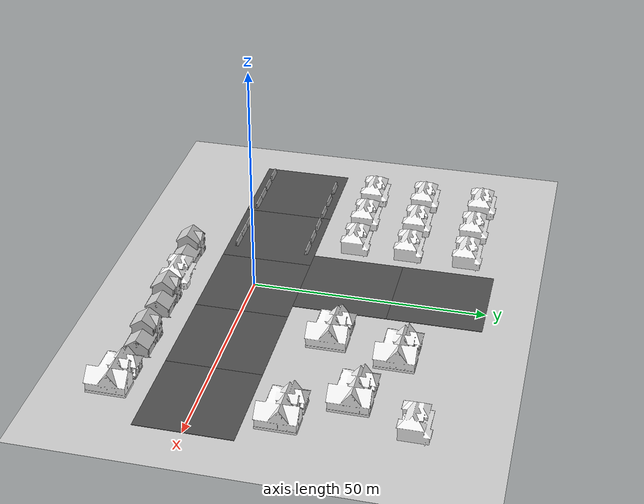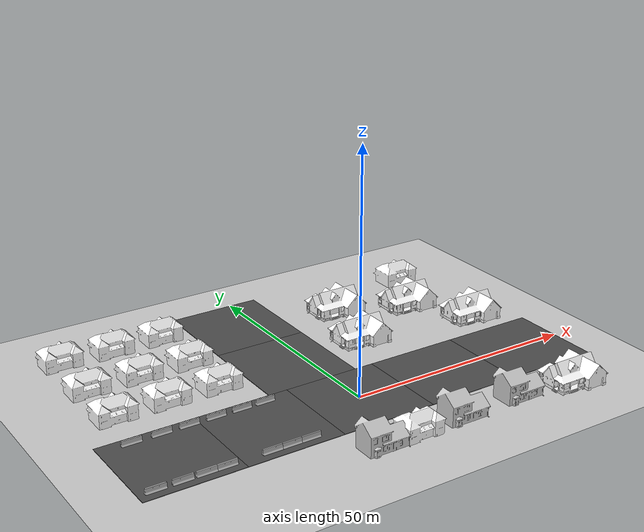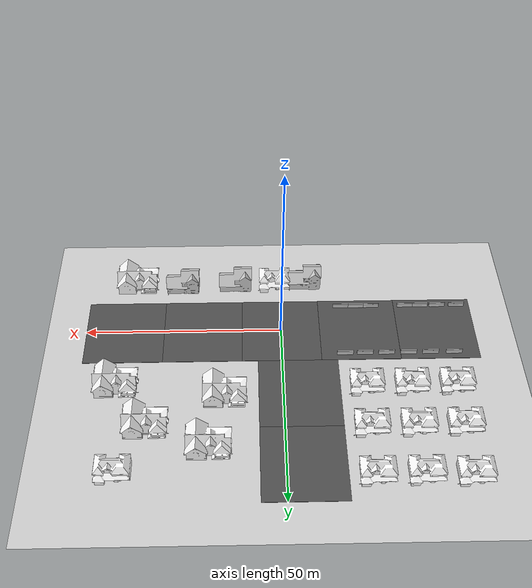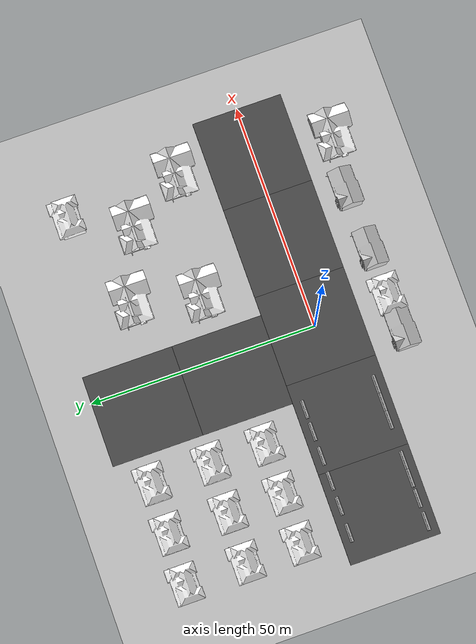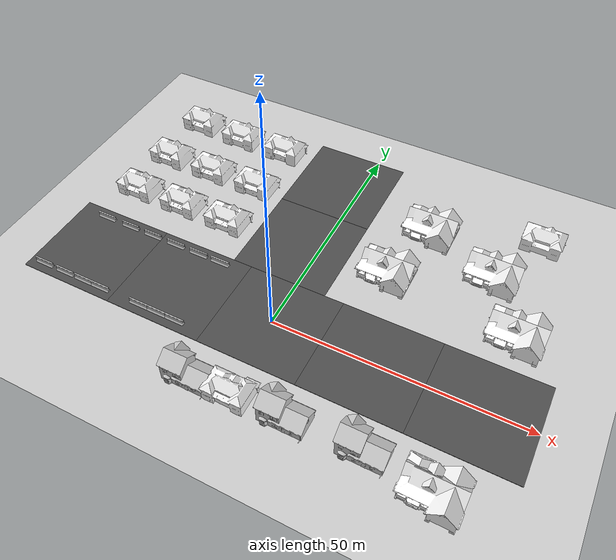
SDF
<sdf version="1.4">
 <world name="default">
  <light name="sun" type="directional">
   <pose>0 0 10 0 -0 0</pose>
   <diffuse>0.8 0.8 0.8 1</diffuse>
   <specular>0.2 0.2 0.2 1</specular>
   <attenuation>
    <range>1000</range>
    <constant>0.9</constant>
    <linear>0.01</linear>
    <quadratic>0.001</quadratic>
   </attenuation>
   <direction>-0.5 0.1 -0.9</direction>
  </light>
  <model name="ground_plane">
   <static>1</static>
   <link name="link">
    <collision name="collision">
     <geometry><plane><normal>0 0 1</normal><size>100 100</size></plane></geometry>
     <surface><friction><ode><mu>100</mu><mu2>50</mu2></ode></friction></surface>
    </collision>
    <visual name="visual">
     <cast_shadows>0</cast_shadows>
     <geometry><plane><normal>0 0 1</normal><size>100 100</size></plane></geometry>
     <material>
      <script><uri>file://media/materials/scripts/gazebo.material</uri><name>Gazebo/Grey</name></script>
     </material>
    </visual>
    <velocity_decay><linear>0</linear><angular>0</angular></velocity_decay>
   </link>
  </model>
  <physics type="ode">
   <max_step_size>0.001</max_step_size>
   <real_time_factor>1</real_time_factor>
   <real_time_update_rate>1000</real_time_update_rate>
   <gravity>0 0 -9.8</gravity>
  </physics>
  <scene><ambient>0.4 0.4 0.4 1</ambient><background>0.7 0.7 0.7 1</background><shadows>1</shadows></scene>
  <spherical_coordinates>
   <surface_model>EARTH_WGS84</surface_model>
   <latitude_deg>0</latitude_deg>
   <longitude_deg>0</longitude_deg>
   <elevation>0</elevation>
   <heading_deg>0</heading_deg>
  </spherical_coordinates>
  <model name="asphalt_plane">
   <static>1</static>
   <link name="link">
    <collision name="collision"><geometry><box><size>20 20 0.1</size></box></geometry></collision>
    <visual name="visual">
     <cast_shadows>0</cast_shadows>
     <geometry><box><size>20 20 0.1</size></box></geometry>
     <material>
      <script>
       <uri>model://asphalt_plane/materials/scripts</uri>
       <uri>model://asphalt_plane/materials/textures</uri>
       <name>vrc/asphalt</name>
      </script>
     </material>
    </visual>
    <velocity_decay><linear>0</linear><angular>0</angular></velocity_decay>
   </link>
  </model>
  <model name="asphalt_plane_0">
   <static>1</static>
   <link name="link">
    <collision name="collision"><geometry><box><size>20 20 0.1</size></box></geometry></collision>
    <visual name="visual">
     <cast_shadows>0</cast_shadows>
     <geometry><box><size>20 20 0.1</size></box></geometry>
     <material>
      <script>
       <uri>model://asphalt_plane/materials/scripts</uri>
       <uri>model://asphalt_plane/materials/textures</uri>
       <name>vrc/asphalt</name>
      </script>
     </material>
    </visual>
    <velocity_decay><linear>0</linear><angular>0</angular></velocity_decay>
   </link>
   <pose>20 0 0 0 -0 0</pose>
  </model>
  <model name="asphalt_plane_1">
   <static>1</static>
   <link name="link">
    <collision name="collision"><geometry><box><size>20 20 0.1</size></box></geometry></collision>
    <visual name="visual">
     <cast_shadows>0</cast_shadows>
     <geometry><box><size>20 20 0.1</size></box></geometry>
     <material>
      <script>
       <uri>model://asphalt_plane/materials/scripts</uri>
       <uri>model://asphalt_plane/materials/textures</uri>
       <name>vrc/asphalt</name>
      </script>
     </material>
    </visual>
    <velocity_decay><linear>0</linear><angular>0</angular></velocity_decay>
   </link>
   <pose>40 0 0 0 -0 0</pose>
  </model>
  <model name="asphalt_plane_2">
   <static>1</static>
   <link name="link">
    <collision name="collision"><geometry><box><size>20 20 0.1</size></box></geometry></collision>
    <visual name="visual">
     <cast_shadows>0</cast_shadows>
     <geometry><box><size>20 20 0.1</size></box></geometry>
     <material>
      <script>
       <uri>model://asphalt_plane/materials/scripts</uri>
       <uri>model://asphalt_plane/materials/textures</uri>
       <name>vrc/asphalt</name>
      </script>
     </material>
    </visual>
    <velocity_decay><linear>0</linear><angular>0</angular></velocity_decay>
   </link>
   <pose>-20 0 0 0 -0 0</pose>
  </model>
  <model name="asphalt_plane_3">
   <static>1</static>
   <link name="link">
    <collision name="collision"><geometry><box><size>20 20 0.1</size></box></geometry></collision>
    <visual name="visual">
     <cast_shadows>0</cast_shadows>
     <geometry><box><size>20 20 0.1</size></box></geometry>
     <material>
      <script>
       <uri>model://asphalt_plane/materials/scripts</uri>
       <uri>model://asphalt_plane/materials/textures</uri>
       <name>vrc/asphalt</name>
      </script>
     </material>
    </visual>
    <velocity_decay><linear>0</linear><angular>0</angular></velocity_decay>
   </link>
   <pose>-40 0 0 0 -0 0</pose>
  </model>
  <model name="House 1">
   <static>1</static>
   <link name="link">
    <collision name="collision">
     <geometry><mesh><uri>model://house_1/meshes/house_1.dae</uri></mesh></geometry>
    </collision>
    <visual name="visual">
     <geometry><mesh><uri>model://house_1/meshes/house_1.dae</uri></mesh></geometry>
     <material>
      <script>
       <uri>model://house_1/materials/scripts</uri>
       <uri>model://house_1/materials/textures</uri>
       <name>House_1/Diffuse</name>
      </script>
      <shader type="normal_map_object_space"><normal_map>House_1_Normal.png</normal_map></shader>
     </material>
    </visual>
    <velocity_decay><linear>0</linear><angular>0</angular></velocity_decay>
   </link>
   <pose>41 17 0 0 -0 0</pose>
  </model>
  <model name="House 1_0">
   <static>1</static>
   <link name="link">
    <collision name="collision">
     <geometry><mesh><uri>model://house_1/meshes/house_1.dae</uri></mesh></geometry>
    </collision>
    <visual name="visual">
     <geometry><mesh><uri>model://house_1/meshes/house_1.dae</uri></mesh></geometry>
     <material>
      <script>
       <uri>model://house_1/materials/scripts</uri>
       <uri>model://house_1/materials/textures</uri>
       <name>House_1/Diffuse</name>
      </script>
      <shader type="normal_map_object_space"><normal_map>House_1_Normal.png</normal_map></shader>
     </material>
    </visual>
    <velocity_decay><linear>0</linear><angular>0</angular></velocity_decay>
   </link>
   <pose>33 29 0 0 -0 0</pose>
  </model>
  <model name="House 1_1">
   <static>1</static>
   <link name="link">
    <collision name="collision">
     <geometry><mesh><uri>model://house_1/meshes/house_1.dae</uri></mesh></geometry>
    </collision>
    <visual name="visual">
     <geometry><mesh><uri>model://house_1/meshes/house_1.dae</uri></mesh></geometry>
     <material>
      <script>
       <uri>model://house_1/materials/scripts</uri>
       <uri>model://house_1/materials/textures</uri>
       <name>House_1/Diffuse</name>
      </script>
      <shader type="normal_map_object_space"><normal_map>House_1_Normal.png</normal_map></shader>
     </material>
    </visual>
    <velocity_decay><linear>0</linear><angular>0</angular></velocity_decay>
   </link>
   <pose>18 35 0 0 -0 0</pose>
  </model>
  <model name="House 1_2">
   <static>1</static>
   <link name="link">
    <collision name="collision">
     <geometry><mesh><uri>model://house_1/meshes/house_1.dae</uri></mesh></geometry>
    </collision>
    <visual name="visual">
     <geometry><mesh><uri>model://house_1/meshes/house_1.dae</uri></mesh></geometry>
     <material>
      <script>
       <uri>model://house_1/materials/scripts</uri>
       <uri>model://house_1/materials/textures</uri>
       <name>House_1/Diffuse</name>
      </script>
      <shader type="normal_map_object_space"><normal_map>House_1_Normal.png</normal_map></shader>
     </material>
    </visual>
    <velocity_decay><linear>0</linear><angular>0</angular></velocity_decay>
   </link>
   <pose>14.4212 20.407 0 0 -0 0</pose>
  </model>
  <model name="asphalt_plane_4">
   <static>1</static>
   <link name="link">
    <collision name="collision"><geometry><box><size>20 20 0.1</size></box></geometry></collision>
    <visual name="visual">
     <cast_shadows>0</cast_shadows>
     <geometry><box><size>20 20 0.1</size></box></geometry>
     <material>
      <script>
       <uri>model://asphalt_plane/materials/scripts</uri>
       <uri>model://asphalt_plane/materials/textures</uri>
       <name>vrc/asphalt</name>
      </script>
     </material>
    </visual>
    <velocity_decay><linear>0</linear><angular>0</angular></velocity_decay>
   </link>
   <pose>-4 20 0 0 -0 0</pose>
  </model>
  <model name="asphalt_plane_5">
   <static>1</static>
   <link name="link">
    <collision name="collision"><geometry><box><size>20 20 0.1</size></box></geometry></collision>
    <visual name="visual">
     <cast_shadows>0</cast_shadows>
     <geometry><box><size>20 20 0.1</size></box></geometry>
     <material>
      <script>
       <uri>model://asphalt_plane/materials/scripts</uri>
       <uri>model://asphalt_plane/materials/textures</uri>
       <name>vrc/asphalt</name>
      </script>
     </material>
    </visual>
    <velocity_decay><linear>0</linear><angular>0</angular></velocity_decay>
   </link>
   <pose>-4 40 0 0 -0 0</pose>
  </model>
  <model name="House 2">
   <static>1</static>
   <link name="link">
    <collision name="collision">
     <geometry><mesh><uri>model://house_2/meshes/house_2.dae</uri></mesh></geometry>
    </collision>
    <visual name="visual">
     <geometry><mesh><uri>model://house_2/meshes/house_2.dae</uri></mesh></geometry>
     <material>
      <script>
       <uri>model://house_2/materials/scripts</uri>
       <uri>model://house_2/materials/textures</uri>
       <uri>model://house_1/materials/textures</uri>
       <name>House_2/Diffuse</name>
      </script>
      <shader type="normal_map_object_space">
       <normal_map>model://house_1/materials/textures/House_1_Normal.png</normal_map>
      </shader>
     </material>
    </visual>
    <velocity_decay><linear>0</linear><angular>0</angular></velocity_decay>
   </link>
   <pose>38.5095 41.5429 0 0 -0 0</pose>
  </model>
  <model name="House 2_0">
   <static>1</static>
   <link name="link">
    <collision name="collision">
     <geometry><mesh><uri>model://house_2/meshes/house_2.dae</uri></mesh></geometry>
    </collision>
    <visual name="visual">
     <geometry><mesh><uri>model://house_2/meshes/house_2.dae</uri></mesh></geometry>
     <material>
      <script>
       <uri>model://house_2/materials/scripts</uri>
       <uri>model://house_2/materials/textures</uri>
       <uri>model://house_1/materials/textures</uri>
       <name>House_2/Diffuse</name>
      </script>
      <shader type="normal_map_object_space">
       <normal_map>model://house_1/materials/textures/House_1_Normal.png</normal_map>
      </shader>
     </material>
    </visual>
    <velocity_decay><linear>0</linear><angular>0</angular></velocity_decay>
   </link>
   <pose>-43 43.404 0 0 -0 0</pose>
  </model>
  <model name="House 2_1">
   <static>1</static>
   <link name="link">
    <collision name="collision">
     <geometry><mesh><uri>model://house_2/meshes/house_2.dae</uri></mesh></geometry>
    </collision>
    <visual name="visual">
     <geometry><mesh><uri>model://house_2/meshes/house_2.dae</uri></mesh></geometry>
     <material>
      <script>
       <uri>model://house_2/materials/scripts</uri>
       <uri>model://house_2/materials/textures</uri>
       <uri>model://house_1/materials/textures</uri>
       <name>House_2/Diffuse</name>
      </script>
      <shader type="normal_map_object_space">
       <normal_map>model://house_1/materials/textures/House_1_Normal.png</normal_map>
      </shader>
     </material>
    </visual>
    <velocity_decay><linear>0</linear><angular>0</angular></velocity_decay>
   </link>
   <pose>-32 43 0 0 -0 0</pose>
  </model>
  <model name="House 2_2">
   <static>1</static>
   <link name="link">
    <collision name="collision">
     <geometry><mesh><uri>model://house_2/meshes/house_2.dae</uri></mesh></geometry>
    </collision>
    <visual name="visual">
     <geometry><mesh><uri>model://house_2/meshes/house_2.dae</uri></mesh></geometry>
     <material>
      <script>
       <uri>model://house_2/materials/scripts</uri>
       <uri>model://house_2/materials/textures</uri>
       <uri>model://house_1/materials/textures</uri>
       <name>House_2/Diffuse</name>
      </script>
      <shader type="normal_map_object_space">
       <normal_map>model://house_1/materials/textures/House_1_Normal.png</normal_map>
      </shader>
     </material>
    </visual>
    <velocity_decay><linear>0</linear><angular>0</angular></velocity_decay>
   </link>
   <pose>-21 43 0 0 -0 0</pose>
  </model>
  <model name="House 2_3">
   <static>1</static>
   <link name="link">
    <collision name="collision">
     <geometry><mesh><uri>model://house_2/meshes/house_2.dae</uri></mesh></geometry>
    </collision>
    <visual name="visual">
     <geometry><mesh><uri>model://house_2/meshes/house_2.dae</uri></mesh></geometry>
     <material>
      <script>
       <uri>model://house_2/materials/scripts</uri>
       <uri>model://house_2/materials/textures</uri>
       <uri>model://house_1/materials/textures</uri>
       <name>House_2/Diffuse</name>
      </script>
      <shader type="normal_map_object_space">
       <normal_map>model://house_1/materials/textures/House_1_Normal.png</normal_map>
      </shader>
     </material>
    </visual>
    <velocity_decay><linear>0</linear><angular>0</angular></velocity_decay>
   </link>
   <pose>-21 30 0 0 -0 0</pose>
  </model>
  <model name="House 2_4">
   <static>1</static>
   <link name="link">
    <collision name="collision">
     <geometry><mesh><uri>model://house_2/meshes/house_2.dae</uri></mesh></geometry>
    </collision>
    <visual name="visual">
     <geometry><mesh><uri>model://house_2/meshes/house_2.dae</uri></mesh></geometry>
     <material>
      <script>
       <uri>model://house_2/materials/scripts</uri>
       <uri>model://house_2/materials/textures</uri>
       <uri>model://house_1/materials/textures</uri>
       <name>House_2/Diffuse</name>
      </script>
      <shader type="normal_map_object_space">
       <normal_map>model://house_1/materials/textures/House_1_Normal.png</normal_map>
      </shader>
     </material>
    </visual>
    <velocity_decay><linear>0</linear><angular>0</angular></velocity_decay>
   </link>
   <pose>-32 30 0 0 -0 0</pose>
  </model>
  <model name="House 2_5">
   <static>1</static>
   <link name="link">
    <collision name="collision">
     <geometry><mesh><uri>model://house_2/meshes/house_2.dae</uri></mesh></geometry>
    </collision>
    <visual name="visual">
     <geometry><mesh><uri>model://house_2/meshes/house_2.dae</uri></mesh></geometry>
     <material>
      <script>
       <uri>model://house_2/materials/scripts</uri>
       <uri>model://house_2/materials/textures</uri>
       <uri>model://house_1/materials/textures</uri>
       <name>House_2/Diffuse</name>
      </script>
      <shader type="normal_map_object_space">
       <normal_map>model://house_1/materials/textures/House_1_Normal.png</normal_map>
      </shader>
     </material>
    </visual>
    <velocity_decay><linear>0</linear><angular>0</angular></velocity_decay>
   </link>
   <pose>-43 30 0 0 -0 0</pose>
  </model>
  <model name="House 2_6">
   <static>1</static>
   <link name="link">
    <collision name="collision">
     <geometry><mesh><uri>model://house_2/meshes/house_2.dae</uri></mesh></geometry>
    </collision>
    <visual name="visual">
     <geometry><mesh><uri>model://house_2/meshes/house_2.dae</uri></mesh></geometry>
     <material>
      <script>
       <uri>model://house_2/materials/scripts</uri>
       <uri>model://house_2/materials/textures</uri>
       <uri>model://house_1/materials/textures</uri>
       <name>House_2/Diffuse</name>
      </script>
      <shader type="normal_map_object_space">
       <normal_map>model://house_1/materials/textures/House_1_Normal.png</normal_map>
      </shader>
     </material>
    </visual>
    <velocity_decay><linear>0</linear><angular>0</angular></velocity_decay>
   </link>
   <pose>-21 18 0 0 -0 0</pose>
  </model>
  <model name="House 2_7">
   <static>1</static>
   <link name="link">
    <collision name="collision">
     <geometry><mesh><uri>model://house_2/meshes/house_2.dae</uri></mesh></geometry>
    </collision>
    <visual name="visual">
     <geometry><mesh><uri>model://house_2/meshes/house_2.dae</uri></mesh></geometry>
     <material>
      <script>
       <uri>model://house_2/materials/scripts</uri>
       <uri>model://house_2/materials/textures</uri>
       <uri>model://house_1/materials/textures</uri>
       <name>House_2/Diffuse</name>
      </script>
      <shader type="normal_map_object_space">
       <normal_map>model://house_1/materials/textures/House_1_Normal.png</normal_map>
      </shader>
     </material>
    </visual>
    <velocity_decay><linear>0</linear><angular>0</angular></velocity_decay>
   </link>
   <pose>-32 18 0 0 -0 0</pose>
  </model>
  <model name="House 2_8">
   <static>1</static>
   <link name="link">
    <collision name="collision">
     <geometry><mesh><uri>model://house_2/meshes/house_2.dae</uri></mesh></geometry>
    </collision>
    <visual name="visual">
     <geometry><mesh><uri>model://house_2/meshes/house_2.dae</uri></mesh></geometry>
     <material>
      <script>
       <uri>model://house_2/materials/scripts</uri>
       <uri>model://house_2/materials/textures</uri>
       <uri>model://house_1/materials/textures</uri>
       <name>House_2/Diffuse</name>
      </script>
      <shader type="normal_map_object_space">
       <normal_map>model://house_1/materials/textures/House_1_Normal.png</normal_map>
      </shader>
     </material>
    </visual>
    <velocity_decay><linear>0</linear><angular>0</angular></velocity_decay>
   </link>
   <pose>-43 18 0 0 -0 0</pose>
  </model>
  <model name="jersey_barrier">
   <static>1</static>
   <link name="link">
    <visual name="visual">
     <geometry><mesh><uri>model://jersey_barrier/meshes/jersey_barrier.dae</uri></mesh></geometry>
    </visual>
    <collision name="upright">
     <pose>0 0 0.5715 0 -0 0</pose>
     <geometry><box><size>4.06542 0.3063 1.143</size></box></geometry>
    </collision>
    <collision name="base">
     <pose>0 0 0.032258 0 -0 0</pose>
     <geometry><box><size>4.06542 0.8107 0.064516</size></box></geometry>
    </collision>
    <collision name="base2">
     <pose>0 0 0.1 0 -0 0</pose>
     <geometry><box><size>4.06542 0.65 0.1</size></box></geometry>
    </collision>
    <collision name="base3">
     <pose>0 0 0.2 0 -0 0</pose>
     <geometry><box><size>4.06542 0.5 0.1</size></box></geometry>
    </collision>
    <collision name="left-angle">
     <pose>0 -0.224 0.2401 0.9 -0 0</pose>
     <geometry><box><size>4.06542 0.5 0.064516</size></box></geometry>
    </collision>
    <collision name="right-angle">
     <pose>0 0.224 0.2401 -0.9 0 0</pose>
     <geometry><box><size>4.06542 0.5 0.064516</size></box></geometry>
    </collision>
    <velocity_decay><linear>0</linear><angular>0</angular></velocity_decay>
   </link>
   <pose>-16 8 0 0 -0 0</pose>
  </model>
  <model name="jersey_barrier_0">
   <static>1</static>
   <link name="link">
    <visual name="visual">
     <geometry><mesh><uri>model://jersey_barrier/meshes/jersey_barrier.dae</uri></mesh></geometry>
    </visual>
    <collision name="upright">
     <pose>0 0 0.5715 0 -0 0</pose>
     <geometry><box><size>4.06542 0.3063 1.143</size></box></geometry>
    </collision>
    <collision name="base">
     <pose>0 0 0.032258 0 -0 0</pose>
     <geometry><box><size>4.06542 0.8107 0.064516</size></box></geometry>
    </collision>
    <collision name="base2">
     <pose>0 0 0.1 0 -0 0</pose>
     <geometry><box><size>4.06542 0.65 0.1</size></box></geometry>
    </collision>
    <collision name="base3">
     <pose>0 0 0.2 0 -0 0</pose>
     <geometry><box><size>4.06542 0.5 0.1</size></box></geometry>
    </collision>
    <collision name="left-angle">
     <pose>0 -0.224 0.2401 0.9 -0 0</pose>
     <geometry><box><size>4.06542 0.5 0.064516</size></box></geometry>
    </collision>
    <collision name="right-angle">
     <pose>0 0.224 0.2401 -0.9 0 0</pose>
     <geometry><box><size>4.06542 0.5 0.064516</size></box></geometry>
    </collision>
    <velocity_decay><linear>0</linear><angular>0</angular></velocity_decay>
   </link>
   <pose>-21 8 0 0 -0 0</pose>
  </model>
  <model name="jersey_barrier_1">
   <static>1</static>
   <link name="link">
    <visual name="visual">
     <geometry><mesh><uri>model://jersey_barrier/meshes/jersey_barrier.dae</uri></mesh></geometry>
    </visual>
    <collision name="upright">
     <pose>0 0 0.5715 0 -0 0</pose>
     <geometry><box><size>4.06542 0.3063 1.143</size></box></geometry>
    </collision>
    <collision name="base">
     <pose>0 0 0.032258 0 -0 0</pose>
     <geometry><box><size>4.06542 0.8107 0.064516</size></box></geometry>
    </collision>
    <collision name="base2">
     <pose>0 0 0.1 0 -0 0</pose>
     <geometry><box><size>4.06542 0.65 0.1</size></box></geometry>
    </collision>
    <collision name="base3">
     <pose>0 0 0.2 0 -0 0</pose>
     <geometry><box><size>4.06542 0.5 0.1</size></box></geometry>
    </collision>
    <collision name="left-angle">
     <pose>0 -0.224 0.2401 0.9 -0 0</pose>
     <geometry><box><size>4.06542 0.5 0.064516</size></box></geometry>
    </collision>
    <collision name="right-angle">
     <pose>0 0.224 0.2401 -0.9 0 0</pose>
     <geometry><box><size>4.06542 0.5 0.064516</size></box></geometry>
    </collision>
    <velocity_decay><linear>0</linear><angular>0</angular></velocity_decay>
   </link>
   <pose>-26.4371 8 0 0 -0 0</pose>
  </model>
  <model name="jersey_barrier_2">
   <static>1</static>
   <link name="link">
    <visual name="visual">
     <geometry><mesh><uri>model://jersey_barrier/meshes/jersey_barrier.dae</uri></mesh></geometry>
    </visual>
    <collision name="upright">
     <pose>0 0 0.5715 0 -0 0</pose>
     <geometry><box><size>4.06542 0.3063 1.143</size></box></geometry>
    </collision>
    <collision name="base">
     <pose>0 0 0.032258 0 -0 0</pose>
     <geometry><box><size>4.06542 0.8107 0.064516</size></box></geometry>
    </collision>
    <collision name="base2">
     <pose>0 0 0.1 0 -0 0</pose>
     <geometry><box><size>4.06542 0.65 0.1</size></box></geometry>
    </collision>
    <collision name="base3">
     <pose>0 0 0.2 0 -0 0</pose>
     <geometry><box><size>4.06542 0.5 0.1</size></box></geometry>
    </collision>
    <collision name="left-angle">
     <pose>0 -0.224 0.2401 0.9 -0 0</pose>
     <geometry><box><size>4.06542 0.5 0.064516</size></box></geometry>
    </collision>
    <collision name="right-angle">
     <pose>0 0.224 0.2401 -0.9 0 0</pose>
     <geometry><box><size>4.06542 0.5 0.064516</size></box></geometry>
    </collision>
    <velocity_decay><linear>0</linear><angular>0</angular></velocity_decay>
   </link>
   <pose>-32 8 0 0 -0 0</pose>
  </model>
  <model name="jersey_barrier_3">
   <static>1</static>
   <link name="link">
    <visual name="visual">
     <geometry><mesh><uri>model://jersey_barrier/meshes/jersey_barrier.dae</uri></mesh></geometry>
    </visual>
    <collision name="upright">
     <pose>0 0 0.5715 0 -0 0</pose>
     <geometry><box><size>4.06542 0.3063 1.143</size></box></geometry>
    </collision>
    <collision name="base">
     <pose>0 0 0.032258 0 -0 0</pose>
     <geometry><box><size>4.06542 0.8107 0.064516</size></box></geometry>
    </collision>
    <collision name="base2">
     <pose>0 0 0.1 0 -0 0</pose>
     <geometry><box><size>4.06542 0.65 0.1</size></box></geometry>
    </collision>
    <collision name="base3">
     <pose>0 0 0.2 0 -0 0</pose>
     <geometry><box><size>4.06542 0.5 0.1</size></box></geometry>
    </collision>
    <collision name="left-angle">
     <pose>0 -0.224 0.2401 0.9 -0 0</pose>
     <geometry><box><size>4.06542 0.5 0.064516</size></box></geometry>
    </collision>
    <collision name="right-angle">
     <pose>0 0.224 0.2401 -0.9 0 0</pose>
     <geometry><box><size>4.06542 0.5 0.064516</size></box></geometry>
    </collision>
    <velocity_decay><linear>0</linear><angular>0</angular></velocity_decay>
   </link>
   <pose>-37.5643 8 0 0 -0 0</pose>
  </model>
  <model name="jersey_barrier_4">
   <static>1</static>
   <link name="link">
    <visual name="visual">
     <geometry><mesh><uri>model://jersey_barrier/meshes/jersey_barrier.dae</uri></mesh></geometry>
    </visual>
    <collision name="upright">
     <pose>0 0 0.5715 0 -0 0</pose>
     <geometry><box><size>4.06542 0.3063 1.143</size></box></geometry>
    </collision>
    <collision name="base">
     <pose>0 0 0.032258 0 -0 0</pose>
     <geometry><box><size>4.06542 0.8107 0.064516</size></box></geometry>
    </collision>
    <collision name="base2">
     <pose>0 0 0.1 0 -0 0</pose>
     <geometry><box><size>4.06542 0.65 0.1</size></box></geometry>
    </collision>
    <collision name="base3">
     <pose>0 0 0.2 0 -0 0</pose>
     <geometry><box><size>4.06542 0.5 0.1</size></box></geometry>
    </collision>
    <collision name="left-angle">
     <pose>0 -0.224 0.2401 0.9 -0 0</pose>
     <geometry><box><size>4.06542 0.5 0.064516</size></box></geometry>
    </collision>
    <collision name="right-angle">
     <pose>0 0.224 0.2401 -0.9 0 0</pose>
     <geometry><box><size>4.06542 0.5 0.064516</size></box></geometry>
    </collision>
    <velocity_decay><linear>0</linear><angular>0</angular></velocity_decay>
   </link>
   <pose>-43.5077 8 0 0 -0 0</pose>
  </model>
  <model name="jersey_barrier_5">
   <static>1</static>
   <link name="link">
    <visual name="visual">
     <geometry><mesh><uri>model://jersey_barrier/meshes/jersey_barrier.dae</uri></mesh></geometry>
    </visual>
    <collision name="upright">
     <pose>0 0 0.5715 0 -0 0</pose>
     <geometry><box><size>4.06542 0.3063 1.143</size></box></geometry>
    </collision>
    <collision name="base">
     <pose>0 0 0.032258 0 -0 0</pose>
     <geometry><box><size>4.06542 0.8107 0.064516</size></box></geometry>
    </collision>
    <collision name="base2">
     <pose>0 0 0.1 0 -0 0</pose>
     <geometry><box><size>4.06542 0.65 0.1</size></box></geometry>
    </collision>
    <collision name="base3">
     <pose>0 0 0.2 0 -0 0</pose>
     <geometry><box><size>4.06542 0.5 0.1</size></box></geometry>
    </collision>
    <collision name="left-angle">
     <pose>0 -0.224 0.2401 0.9 -0 0</pose>
     <geometry><box><size>4.06542 0.5 0.064516</size></box></geometry>
    </collision>
    <collision name="right-angle">
     <pose>0 0.224 0.2401 -0.9 0 0</pose>
     <geometry><box><size>4.06542 0.5 0.064516</size></box></geometry>
    </collision>
    <velocity_decay><linear>0</linear><angular>0</angular></velocity_decay>
   </link>
   <pose>-16 -8 0 0 -0 0</pose>
  </model>
  <model name="jersey_barrier_6">
   <static>1</static>
   <link name="link">
    <visual name="visual">
     <geometry><mesh><uri>model://jersey_barrier/meshes/jersey_barrier.dae</uri></mesh></geometry>
    </visual>
    <collision name="upright">
     <pose>0 0 0.5715 0 -0 0</pose>
     <geometry><box><size>4.06542 0.3063 1.143</size></box></geometry>
    </collision>
    <collision name="base">
     <pose>0 0 0.032258 0 -0 0</pose>
     <geometry><box><size>4.06542 0.8107 0.064516</size></box></geometry>
    </collision>
    <collision name="base2">
     <pose>0 0 0.1 0 -0 0</pose>
     <geometry><box><size>4.06542 0.65 0.1</size></box></geometry>
    </collision>
    <collision name="base3">
     <pose>0 0 0.2 0 -0 0</pose>
     <geometry><box><size>4.06542 0.5 0.1</size></box></geometry>
    </collision>
    <collision name="left-angle">
     <pose>0 -0.224 0.2401 0.9 -0 0</pose>
     <geometry><box><size>4.06542 0.5 0.064516</size></box></geometry>
    </collision>
    <collision name="right-angle">
     <pose>0 0.224 0.2401 -0.9 0 0</pose>
     <geometry><box><size>4.06542 0.5 0.064516</size></box></geometry>
    </collision>
    <velocity_decay><linear>0</linear><angular>0</angular></velocity_decay>
   </link>
   <pose>-20 -8 0 0 -0 0</pose>
  </model>
  <model name="jersey_barrier_7">
   <static>1</static>
   <link name="link">
    <visual name="visual">
     <geometry><mesh><uri>model://jersey_barrier/meshes/jersey_barrier.dae</uri></mesh></geometry>
    </visual>
    <collision name="upright">
     <pose>0 0 0.5715 0 -0 0</pose>
     <geometry><box><size>4.06542 0.3063 1.143</size></box></geometry>
    </collision>
    <collision name="base">
     <pose>0 0 0.032258 0 -0 0</pose>
     <geometry><box><size>4.06542 0.8107 0.064516</size></box></geometry>
    </collision>
    <collision name="base2">
     <pose>0 0 0.1 0 -0 0</pose>
     <geometry><box><size>4.06542 0.65 0.1</size></box></geometry>
    </collision>
    <collision name="base3">
     <pose>0 0 0.2 0 -0 0</pose>
     <geometry><box><size>4.06542 0.5 0.1</size></box></geometry>
    </collision>
    <collision name="left-angle">
     <pose>0 -0.224 0.2401 0.9 -0 0</pose>
     <geometry><box><size>4.06542 0.5 0.064516</size></box></geometry>
    </collision>
    <collision name="right-angle">
     <pose>0 0.224 0.2401 -0.9 0 0</pose>
     <geometry><box><size>4.06542 0.5 0.064516</size></box></geometry>
    </collision>
    <velocity_decay><linear>0</linear><angular>0</angular></velocity_decay>
   </link>
   <pose>-24 -8 0 0 -0 0</pose>
  </model>
  <model name="jersey_barrier_9">
   <static>1</static>
   <link name="link">
    <visual name="visual">
     <geometry><mesh><uri>model://jersey_barrier/meshes/jersey_barrier.dae</uri></mesh></geometry>
    </visual>
    <collision name="upright">
     <pose>0 0 0.5715 0 -0 0</pose>
     <geometry><box><size>4.06542 0.3063 1.143</size></box></geometry>
    </collision>
    <collision name="base">
     <pose>0 0 0.032258 0 -0 0</pose>
     <geometry><box><size>4.06542 0.8107 0.064516</size></box></geometry>
    </collision>
    <collision name="base2">
     <pose>0 0 0.1 0 -0 0</pose>
     <geometry><box><size>4.06542 0.65 0.1</size></box></geometry>
    </collision>
    <collision name="base3">
     <pose>0 0 0.2 0 -0 0</pose>
     <geometry><box><size>4.06542 0.5 0.1</size></box></geometry>
    </collision>
    <collision name="left-angle">
     <pose>0 -0.224 0.2401 0.9 -0 0</pose>
     <geometry><box><size>4.06542 0.5 0.064516</size></box></geometry>
    </collision>
    <collision name="right-angle">
     <pose>0 0.224 0.2401 -0.9 0 0</pose>
     <geometry><box><size>4.06542 0.5 0.064516</size></box></geometry>
    </collision>
    <velocity_decay><linear>0</linear><angular>0</angular></velocity_decay>
   </link>
   <pose>-33 -8 0 0 -0 0</pose>
  </model>
  <model name="jersey_barrier_10">
   <static>1</static>
   <link name="link">
    <visual name="visual">
     <geometry><mesh><uri>model://jersey_barrier/meshes/jersey_barrier.dae</uri></mesh></geometry>
    </visual>
    <collision name="upright">
     <pose>0 0 0.5715 0 -0 0</pose>
     <geometry><box><size>4.06542 0.3063 1.143</size></box></geometry>
    </collision>
    <collision name="base">
     <pose>0 0 0.032258 0 -0 0</pose>
     <geometry><box><size>4.06542 0.8107 0.064516</size></box></geometry>
    </collision>
    <collision name="base2">
     <pose>0 0 0.1 0 -0 0</pose>
     <geometry><box><size>4.06542 0.65 0.1</size></box></geometry>
    </collision>
    <collision name="base3">
     <pose>0 0 0.2 0 -0 0</pose>
     <geometry><box><size>4.06542 0.5 0.1</size></box></geometry>
    </collision>
    <collision name="left-angle">
     <pose>0 -0.224 0.2401 0.9 -0 0</pose>
     <geometry><box><size>4.06542 0.5 0.064516</size></box></geometry>
    </collision>
    <collision name="right-angle">
     <pose>0 0.224 0.2401 -0.9 0 0</pose>
     <geometry><box><size>4.06542 0.5 0.064516</size></box></geometry>
    </collision>
    <velocity_decay><linear>0</linear><angular>0</angular></velocity_decay>
   </link>
   <pose>-37 -8 0 0 -0 0</pose>
  </model>
  <model name="jersey_barrier_11">
   <static>1</static>
   <link name="link">
    <visual name="visual">
     <geometry><mesh><uri>model://jersey_barrier/meshes/jersey_barrier.dae</uri></mesh></geometry>
    </visual>
    <collision name="upright">
     <pose>0 0 0.5715 0 -0 0</pose>
     <geometry><box><size>4.06542 0.3063 1.143</size></box></geometry>
    </collision>
    <collision name="base">
     <pose>0 0 0.032258 0 -0 0</pose>
     <geometry><box><size>4.06542 0.8107 0.064516</size></box></geometry>
    </collision>
    <collision name="base2">
     <pose>0 0 0.1 0 -0 0</pose>
     <geometry><box><size>4.06542 0.65 0.1</size></box></geometry>
    </collision>
    <collision name="base3">
     <pose>0 0 0.2 0 -0 0</pose>
     <geometry><box><size>4.06542 0.5 0.1</size></box></geometry>
    </collision>
    <collision name="left-angle">
     <pose>0 -0.224 0.2401 0.9 -0 0</pose>
     <geometry><box><size>4.06542 0.5 0.064516</size></box></geometry>
    </collision>
    <collision name="right-angle">
     <pose>0 0.224 0.2401 -0.9 0 0</pose>
     <geometry><box><size>4.06542 0.5 0.064516</size></box></geometry>
    </collision>
    <velocity_decay><linear>0</linear><angular>0</angular></velocity_decay>
   </link>
   <pose>-41.4916 -8 0 0 -0 0</pose>
  </model>
  <model name="jersey_barrier_12">
   <static>1</static>
   <link name="link">
    <visual name="visual">
     <geometry><mesh><uri>model://jersey_barrier/meshes/jersey_barrier.dae</uri></mesh></geometry>
    </visual>
    <collision name="upright">
     <pose>0 0 0.5715 0 -0 0</pose>
     <geometry><box><size>4.06542 0.3063 1.143</size></box></geometry>
    </collision>
    <collision name="base">
     <pose>0 0 0.032258 0 -0 0</pose>
     <geometry><box><size>4.06542 0.8107 0.064516</size></box></geometry>
    </collision>
    <collision name="base2">
     <pose>0 0 0.1 0 -0 0</pose>
     <geometry><box><size>4.06542 0.65 0.1</size></box></geometry>
    </collision>
    <collision name="base3">
     <pose>0 0 0.2 0 -0 0</pose>
     <geometry><box><size>4.06542 0.5 0.1</size></box></geometry>
    </collision>
    <collision name="left-angle">
     <pose>0 -0.224 0.2401 0.9 -0 0</pose>
     <geometry><box><size>4.06542 0.5 0.064516</size></box></geometry>
    </collision>
    <collision name="right-angle">
     <pose>0 0.224 0.2401 -0.9 0 0</pose>
     <geometry><box><size>4.06542 0.5 0.064516</size></box></geometry>
    </collision>
    <velocity_decay><linear>0</linear><angular>0</angular></velocity_decay>
   </link>
   <pose>-46.5898 -8 0 0 -0 0</pose>
  </model>
  <model name="House 3">
   <static>1</static>
   <link name="link">
    <collision name="collision">
     <geometry><mesh><uri>model://house_3/meshes/house_3.dae</uri></mesh></geometry>
    </collision>
    <visual name="visual">
     <geometry><mesh><uri>model://house_3/meshes/house_3.dae</uri></mesh></geometry>
     <material>
      <script>
       <uri>model://house_3/materials/scripts</uri>
       <uri>model://house_3/materials/textures</uri>
       <uri>model://house_1/materials/textures</uri>
       <name>House_3/Diffuse</name>
      </script>
      <shader type="normal_map_object_space">
       <normal_map>model://house_1/materials/textures/House_1_Normal.png</normal_map>
      </shader>
     </material>
    </visual>
    <velocity_decay><linear>0</linear><angular>0</angular></velocity_decay>
   </link>
   <pose>-6.48629 -17 0 0 -0 0</pose>
  </model>
  <model name="House 3_0">
   <static>1</static>
   <link name="link">
    <collision name="collision">
     <geometry><mesh><uri>model://house_3/meshes/house_3.dae</uri></mesh></geometry>
    </collision>
    <visual name="visual">
     <geometry><mesh><uri>model://house_3/meshes/house_3.dae</uri></mesh></geometry>
     <material>
      <script>
       <uri>model://house_3/materials/scripts</uri>
       <uri>model://house_3/materials/textures</uri>
       <uri>model://house_1/materials/textures</uri>
       <name>House_3/Diffuse</name>
      </script>
      <shader type="normal_map_object_space">
       <normal_map>model://house_1/materials/textures/House_1_Normal.png</normal_map>
      </shader>
     </material>
    </visual>
    <velocity_decay><linear>0</linear><angular>0</angular></velocity_decay>
   </link>
   <pose>12 -16.5005 0 0 -0 0</pose>
  </model>
  <model name="House 3_1">
   <static>1</static>
   <link name="link">
    <collision name="collision">
     <geometry><mesh><uri>model://house_3/meshes/house_3.dae</uri></mesh></geometry>
    </collision>
    <visual name="visual">
     <geometry><mesh><uri>model://house_3/meshes/house_3.dae</uri></mesh></geometry>
     <material>
      <script>
       <uri>model://house_3/materials/scripts</uri>
       <uri>model://house_3/materials/textures</uri>
       <uri>model://house_1/materials/textures</uri>
       <name>House_3/Diffuse</name>
      </script>
      <shader type="normal_map_object_space">
       <normal_map>model://house_1/materials/textures/House_1_Normal.png</normal_map>
      </shader>
     </material>
    </visual>
    <velocity_decay><linear>0</linear><angular>0</angular></velocity_decay>
   </link>
   <pose>26 -16 0 0 -0 0</pose>
  </model>
  <model name="House 2_9">
   <static>1</static>
   <link name="link">
    <collision name="collision">
     <geometry><mesh><uri>model://house_2/meshes/house_2.dae</uri></mesh></geometry>
    </collision>
    <visual name="visual">
     <geometry><mesh><uri>model://house_2/meshes/house_2.dae</uri></mesh></geometry>
     <material>
      <script>
       <uri>model://house_2/materials/scripts</uri>
       <uri>model://house_2/materials/textures</uri>
       <uri>model://house_1/materials/textures</uri>
       <name>House_2/Diffuse</name>
      </script>
      <shader type="normal_map_object_space">
       <normal_map>model://house_1/materials/textures/House_1_Normal.png</normal_map>
      </shader>
     </material>
    </visual>
    <velocity_decay><linear>0</linear><angular>0</angular></velocity_decay>
   </link>
   <pose>0.563801 -17 0 0 -0 0</pose>
  </model>
  <model name="House 1_3">
   <static>1</static>
   <link name="link">
    <collision name="collision">
     <geometry><mesh><uri>model://house_1/meshes/house_1.dae</uri></mesh></geometry>
    </collision>
    <visual name="visual">
     <geometry><mesh><uri>model://house_1/meshes/house_1.dae</uri></mesh></geometry>
     <material>
      <script>
       <uri>model://house_1/materials/scripts</uri>
       <uri>model://house_1/materials/textures</uri>
       <name>House_1/Diffuse</name>
      </script>
      <shader type="normal_map_object_space"><normal_map>House_1_Normal.png</normal_map></shader>
     </material>
    </visual>
    <velocity_decay><linear>0</linear><angular>0</angular></velocity_decay>
   </link>
   <pose>38 -17.4796 0 0 -0 0</pose>
  </model>
 </world>
</sdf>
